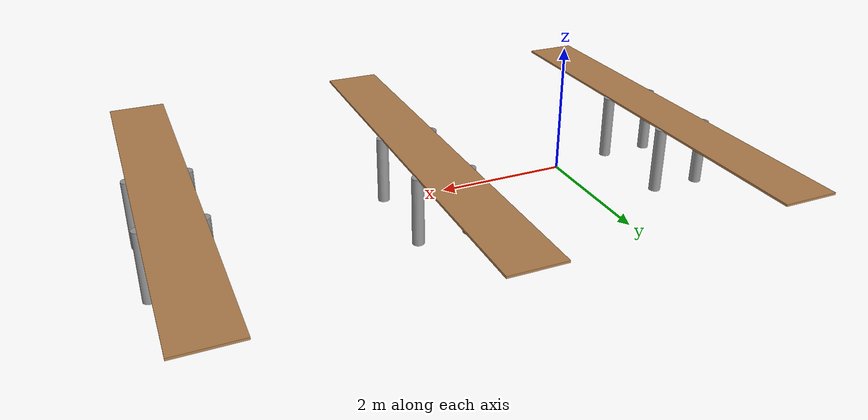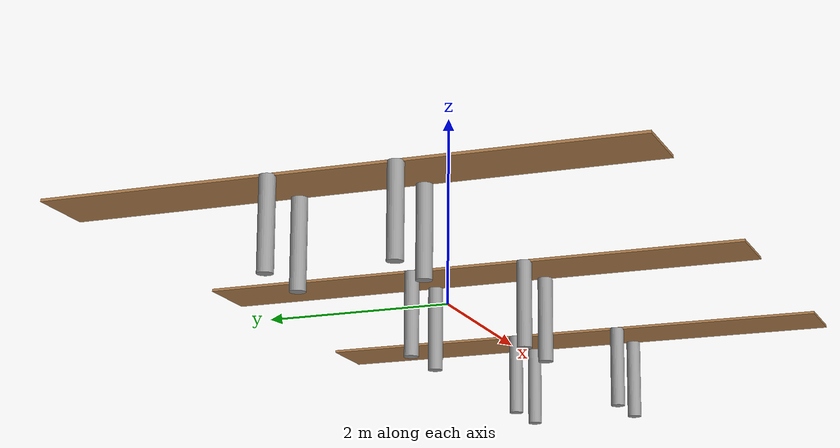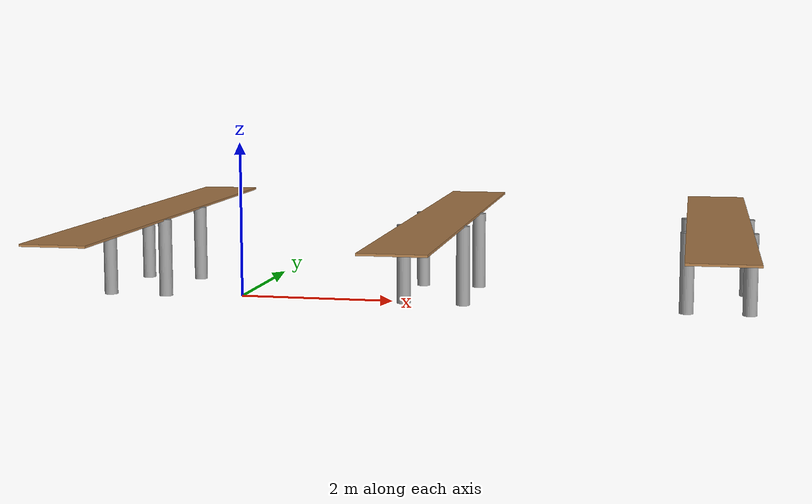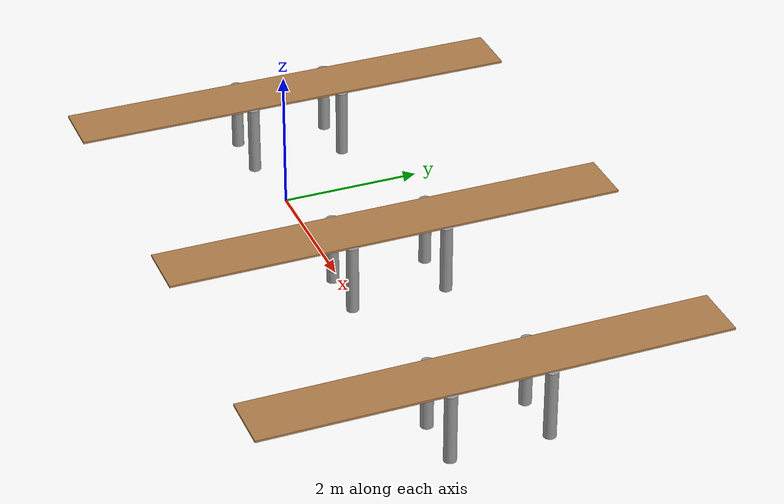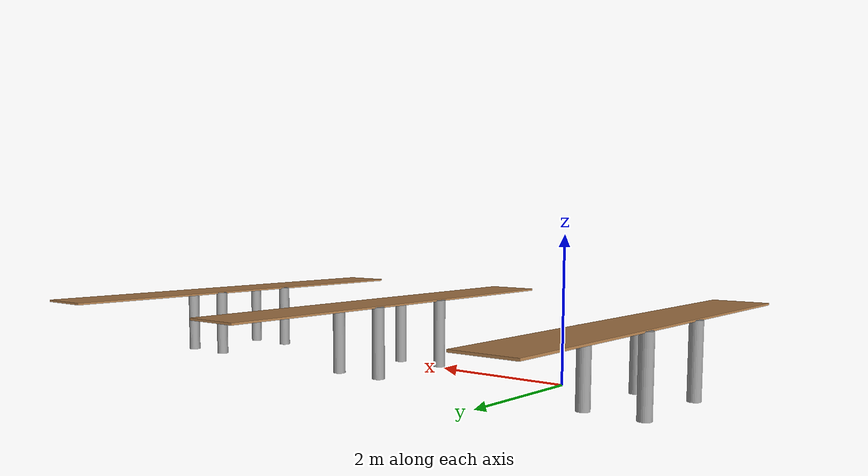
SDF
<?xml version='1.0'?>
<sdf version='1.6'>
  <model name='table'>
    <link name='link'>
      <pose frame=''>6.07476 0.523898 0 0 -0 1.57</pose>
      <self_collide>0</self_collide>
      <kinematic>0</kinematic>
      <gravity>1</gravity>
      <inertial>
        <mass>6.06198</mass>
        <pose frame=''>0 0 0 0 -0 0</pose>
        <inertia>
          <ixx>0.520272</ixx>
          <ixy>0</ixy>
          <ixz>0</ixz>
          <iyy>0.520272</iyy>
          <iyz>0</iyz>
          <izz>0.0302146</izz>
        </inertia>
      </inertial>
      <visual name='visual1'>
        <pose frame=''>0 0 1 0 -0 0</pose>
        <geometry>
          <box>
            <size>6.44799 0.8 0.03</size>
          </box>
        </geometry>
        <material>
          <script>
            <uri>file://media/materials/scripts/gazebo.material</uri>
            <name>Gazebo/Wood</name>
          </script>
          <shader type='pixel'>
            <normal_map>__default__</normal_map>
          </shader>
          <ambient>1 1 1 1</ambient>
          <diffuse>1 1 1 1</diffuse>
          <specular>0.2 0.2 0.2 1</specular>
          <emissive>0 0 0 1</emissive>
        </material>
        <transparency>0</transparency>
        <cast_shadows>1</cast_shadows>
      </visual>
      <visual name='front_left_leg'>
        <pose frame=''>0.68 0.38 0.5 0 -0 0</pose>
        <geometry>
          <cylinder>
            <radius>0.0864663</radius>
            <length>1</length>
          </cylinder>
        </geometry>
        <material>
          <script>
            <uri>file://media/materials/scripts/gazebo.material</uri>
            <name>Gazebo/Grey</name>
          </script>
          <shader type='pixel'>
            <normal_map>__default__</normal_map>
          </shader>
          <ambient>0.3 0.3 0.3 1</ambient>
          <diffuse>0.7 0.7 0.7 1</diffuse>
          <specular>0.01 0.01 0.01 1</specular>
          <emissive>0 0 0 1</emissive>
        </material>
        <transparency>0</transparency>
        <cast_shadows>1</cast_shadows>
      </visual>
      <visual name='front_right_leg'>
        <pose frame=''>0.68 -0.38 0.5 0 -0 0</pose>
        <geometry>
          <cylinder>
            <radius>0.0864663</radius>
            <length>1</length>
          </cylinder>
        </geometry>
        <material>
          <script>
            <uri>file://media/materials/scripts/gazebo.material</uri>
            <name>Gazebo/Grey</name>
          </script>
          <shader type='pixel'>
            <normal_map>__default__</normal_map>
          </shader>
          <ambient>0.3 0.3 0.3 1</ambient>
          <diffuse>0.7 0.7 0.7 1</diffuse>
          <specular>0.01 0.01 0.01 1</specular>
          <emissive>0 0 0 1</emissive>
        </material>
        <transparency>0</transparency>
        <cast_shadows>1</cast_shadows>
      </visual>
      <visual name='back_right_leg'>
        <pose frame=''>-0.68 -0.38 0.5 0 -0 0</pose>
        <geometry>
          <cylinder>
            <radius>0.0864663</radius>
            <length>1</length>
          </cylinder>
        </geometry>
        <material>
          <script>
            <uri>file://media/materials/scripts/gazebo.material</uri>
            <name>Gazebo/Grey</name>
          </script>
          <shader type='pixel'>
            <normal_map>__default__</normal_map>
          </shader>
          <ambient>0.3 0.3 0.3 1</ambient>
          <diffuse>0.7 0.7 0.7 1</diffuse>
          <specular>0.01 0.01 0.01 1</specular>
          <emissive>0 0 0 1</emissive>
        </material>
        <transparency>0</transparency>
        <cast_shadows>1</cast_shadows>
      </visual>
      <visual name='back_left_leg'>
        <pose frame=''>-0.68 0.38 0.5 0 -0 0</pose>
        <geometry>
          <cylinder>
            <radius>0.0864663</radius>
            <length>1</length>
          </cylinder>
        </geometry>
        <material>
          <script>
            <uri>file://media/materials/scripts/gazebo.material</uri>
            <name>Gazebo/Grey</name>
          </script>
          <shader type='pixel'>
            <normal_map>__default__</normal_map>
          </shader>
          <ambient>0.3 0.3 0.3 1</ambient>
          <diffuse>0.7 0.7 0.7 1</diffuse>
          <specular>0.01 0.01 0.01 1</specular>
          <emissive>0 0 0 1</emissive>
        </material>
        <transparency>0</transparency>
        <cast_shadows>1</cast_shadows>
      </visual>
      <collision name='surface'>
        <laser_retro>0</laser_retro>
        <max_contacts>10</max_contacts>
        <pose frame=''>0 0 1 0 -0 0</pose>
        <geometry>
          <box>
            <size>6.44799 0.8 0.03</size>
          </box>
        </geometry>
        <surface>
          <friction>
            <ode>
              <mu>0.6</mu>
              <mu2>0.6</mu2>
              <fdir1>0 0 0</fdir1>
              <slip1>0</slip1>
              <slip2>0</slip2>
            </ode>
            <torsional>
              <coefficient>1</coefficient>
              <patch_radius>0</patch_radius>
              <surface_radius>0</surface_radius>
              <use_patch_radius>1</use_patch_radius>
              <ode>
                <slip>0</slip>
              </ode>
            </torsional>
          </friction>
          <bounce>
            <restitution_coefficient>0</restitution_coefficient>
            <threshold>1e+06</threshold>
          </bounce>
          <contact>
            <collide_without_contact>0</collide_without_contact>
            <collide_without_contact_bitmask>1</collide_without_contact_bitmask>
            <collide_bitmask>1</collide_bitmask>
            <ode>
              <soft_cfm>0</soft_cfm>
              <soft_erp>0.2</soft_erp>
              <kp>1e+13</kp>
              <kd>1</kd>
              <max_vel>0.01</max_vel>
              <min_depth>0</min_depth>
            </ode>
            <bullet>
              <split_impulse>1</split_impulse>
              <split_impulse_penetration_threshold>-0.01</split_impulse_penetration_threshold>
              <soft_cfm>0</soft_cfm>
              <soft_erp>0.2</soft_erp>
              <kp>1e+13</kp>
              <kd>1</kd>
            </bullet>
          </contact>
        </surface>
      </collision>
      <collision name='front_left_leg'>
        <laser_retro>0</laser_retro>
        <max_contacts>10</max_contacts>
        <pose frame=''>0.68 0.38 0.5 0 -0 0</pose>
        <geometry>
          <cylinder>
            <radius>0.086466</radius>
            <length>1</length>
          </cylinder>
        </geometry>
        <surface>
          <friction>
            <ode>
              <mu>1</mu>
              <mu2>1</mu2>
              <fdir1>0 0 0</fdir1>
              <slip1>0</slip1>
              <slip2>0</slip2>
            </ode>
            <torsional>
              <coefficient>1</coefficient>
              <patch_radius>0</patch_radius>
              <surface_radius>0</surface_radius>
              <use_patch_radius>1</use_patch_radius>
              <ode>
                <slip>0</slip>
              </ode>
            </torsional>
          </friction>
          <bounce>
            <restitution_coefficient>0</restitution_coefficient>
            <threshold>1e+06</threshold>
          </bounce>
          <contact>
            <collide_without_contact>0</collide_without_contact>
            <collide_without_contact_bitmask>1</collide_without_contact_bitmask>
            <collide_bitmask>1</collide_bitmask>
            <ode>
              <soft_cfm>0</soft_cfm>
              <soft_erp>0.2</soft_erp>
              <kp>1e+13</kp>
              <kd>1</kd>
              <max_vel>0.01</max_vel>
              <min_depth>0</min_depth>
            </ode>
            <bullet>
              <split_impulse>1</split_impulse>
              <split_impulse_penetration_threshold>-0.01</split_impulse_penetration_threshold>
              <soft_cfm>0</soft_cfm>
              <soft_erp>0.2</soft_erp>
              <kp>1e+13</kp>
              <kd>1</kd>
            </bullet>
          </contact>
        </surface>
      </collision>
      <collision name='back_right_leg'>
        <laser_retro>0</laser_retro>
        <max_contacts>10</max_contacts>
        <pose frame=''>-0.68 -0.38 0.5 0 -0 0</pose>
        <geometry>
          <cylinder>
            <radius>0.086466</radius>
            <length>1</length>
          </cylinder>
        </geometry>
        <surface>
          <friction>
            <ode>
              <mu>1</mu>
              <mu2>1</mu2>
              <fdir1>0 0 0</fdir1>
              <slip1>0</slip1>
              <slip2>0</slip2>
            </ode>
            <torsional>
              <coefficient>1</coefficient>
              <patch_radius>0</patch_radius>
              <surface_radius>0</surface_radius>
              <use_patch_radius>1</use_patch_radius>
              <ode>
                <slip>0</slip>
              </ode>
            </torsional>
          </friction>
          <bounce>
            <restitution_coefficient>0</restitution_coefficient>
            <threshold>1e+06</threshold>
          </bounce>
          <contact>
            <collide_without_contact>0</collide_without_contact>
            <collide_without_contact_bitmask>1</collide_without_contact_bitmask>
            <collide_bitmask>1</collide_bitmask>
            <ode>
              <soft_cfm>0</soft_cfm>
              <soft_erp>0.2</soft_erp>
              <kp>1e+13</kp>
              <kd>1</kd>
              <max_vel>0.01</max_vel>
              <min_depth>0</min_depth>
            </ode>
            <bullet>
              <split_impulse>1</split_impulse>
              <split_impulse_penetration_threshold>-0.01</split_impulse_penetration_threshold>
              <soft_cfm>0</soft_cfm>
              <soft_erp>0.2</soft_erp>
              <kp>1e+13</kp>
              <kd>1</kd>
            </bullet>
          </contact>
        </surface>
      </collision>
      <collision name='front_right_leg'>
        <laser_retro>0</laser_retro>
        <max_contacts>10</max_contacts>
        <pose frame=''>0.68 -0.38 0.5 0 -0 0</pose>
        <geometry>
          <cylinder>
            <radius>0.086466</radius>
            <length>1</length>
          </cylinder>
        </geometry>
        <surface>
          <friction>
            <ode>
              <mu>1</mu>
              <mu2>1</mu2>
              <fdir1>0 0 0</fdir1>
              <slip1>0</slip1>
              <slip2>0</slip2>
            </ode>
            <torsional>
              <coefficient>1</coefficient>
              <patch_radius>0</patch_radius>
              <surface_radius>0</surface_radius>
              <use_patch_radius>1</use_patch_radius>
              <ode>
                <slip>0</slip>
              </ode>
            </torsional>
          </friction>
          <bounce>
            <restitution_coefficient>0</restitution_coefficient>
            <threshold>1e+06</threshold>
          </bounce>
          <contact>
            <collide_without_contact>0</collide_without_contact>
            <collide_without_contact_bitmask>1</collide_without_contact_bitmask>
            <collide_bitmask>1</collide_bitmask>
            <ode>
              <soft_cfm>0</soft_cfm>
              <soft_erp>0.2</soft_erp>
              <kp>1e+13</kp>
              <kd>1</kd>
              <max_vel>0.01</max_vel>
              <min_depth>0</min_depth>
            </ode>
            <bullet>
              <split_impulse>1</split_impulse>
              <split_impulse_penetration_threshold>-0.01</split_impulse_penetration_threshold>
              <soft_cfm>0</soft_cfm>
              <soft_erp>0.2</soft_erp>
              <kp>1e+13</kp>
              <kd>1</kd>
            </bullet>
          </contact>
        </surface>
      </collision>
      <collision name='back_left_leg'>
        <laser_retro>0</laser_retro>
        <max_contacts>10</max_contacts>
        <pose frame=''>-0.68 0.38 0.5 0 -0 0</pose>
        <geometry>
          <cylinder>
            <radius>0.086466</radius>
            <length>1</length>
          </cylinder>
        </geometry>
        <surface>
          <friction>
            <ode>
              <mu>1</mu>
              <mu2>1</mu2>
              <fdir1>0 0 0</fdir1>
              <slip1>0</slip1>
              <slip2>0</slip2>
            </ode>
            <torsional>
              <coefficient>1</coefficient>
              <patch_radius>0</patch_radius>
              <surface_radius>0</surface_radius>
              <use_patch_radius>1</use_patch_radius>
              <ode>
                <slip>0</slip>
              </ode>
            </torsional>
          </friction>
          <bounce>
            <restitution_coefficient>0</restitution_coefficient>
            <threshold>1e+06</threshold>
          </bounce>
          <contact>
            <collide_without_contact>0</collide_without_contact>
            <collide_without_contact_bitmask>1</collide_without_contact_bitmask>
            <collide_bitmask>1</collide_bitmask>
            <ode>
              <soft_cfm>0</soft_cfm>
              <soft_erp>0.2</soft_erp>
              <kp>1e+13</kp>
              <kd>1</kd>
              <max_vel>0.01</max_vel>
              <min_depth>0</min_depth>
            </ode>
            <bullet>
              <split_impulse>1</split_impulse>
              <split_impulse_penetration_threshold>-0.01</split_impulse_penetration_threshold>
              <soft_cfm>0</soft_cfm>
              <soft_erp>0.2</soft_erp>
              <kp>1e+13</kp>
              <kd>1</kd>
            </bullet>
          </contact>
        </surface>
      </collision>
    </link>
    <link name='link_clone'>
      <pose frame=''>2.54774 0.582371 0 0 -0 1.57</pose>
      <inertial>
        <mass>6.06198</mass>
        <pose frame=''>0 0 0 0 -0 0</pose>
        <inertia>
          <ixx>0.520272</ixx>
          <ixy>0</ixy>
          <ixz>0</ixz>
          <iyy>0.520272</iyy>
          <iyz>0</iyz>
          <izz>0.0302146</izz>
        </inertia>
      </inertial>
      <self_collide>0</self_collide>
      <kinematic>0</kinematic>
      <visual name='front_left_leg'>
        <pose frame=''>0.68 0.38 0.5 0 -0 0</pose>
        <geometry>
          <cylinder>
            <radius>0.0864663</radius>
            <length>1</length>
          </cylinder>
        </geometry>
        <material>
          <script>
            <uri>file://media/materials/scripts/gazebo.material</uri>
            <name>Gazebo/Grey</name>
          </script>
          <shader type='pixel'>
            <normal_map>__default__</normal_map>
          </shader>
          <ambient>0.3 0.3 0.3 1</ambient>
          <diffuse>0.7 0.7 0.7 1</diffuse>
          <specular>0.01 0.01 0.01 1</specular>
          <emissive>0 0 0 1</emissive>
        </material>
        <transparency>0</transparency>
        <cast_shadows>1</cast_shadows>
      </visual>
      <visual name='front_right_leg'>
        <pose frame=''>0.68 -0.38 0.5 0 -0 0</pose>
        <geometry>
          <cylinder>
            <radius>0.0864663</radius>
            <length>1</length>
          </cylinder>
        </geometry>
        <material>
          <script>
            <uri>file://media/materials/scripts/gazebo.material</uri>
            <name>Gazebo/Grey</name>
          </script>
          <shader type='pixel'>
            <normal_map>__default__</normal_map>
          </shader>
          <ambient>0.3 0.3 0.3 1</ambient>
          <diffuse>0.7 0.7 0.7 1</diffuse>
          <specular>0.01 0.01 0.01 1</specular>
          <emissive>0 0 0 1</emissive>
        </material>
        <transparency>0</transparency>
        <cast_shadows>1</cast_shadows>
      </visual>
      <visual name='back_right_leg'>
        <pose frame=''>-0.68 -0.38 0.5 0 -0 0</pose>
        <geometry>
          <cylinder>
            <radius>0.0864663</radius>
            <length>1</length>
          </cylinder>
        </geometry>
        <material>
          <script>
            <uri>file://media/materials/scripts/gazebo.material</uri>
            <name>Gazebo/Grey</name>
          </script>
          <shader type='pixel'>
            <normal_map>__default__</normal_map>
          </shader>
          <ambient>0.3 0.3 0.3 1</ambient>
          <diffuse>0.7 0.7 0.7 1</diffuse>
          <specular>0.01 0.01 0.01 1</specular>
          <emissive>0 0 0 1</emissive>
        </material>
        <transparency>0</transparency>
        <cast_shadows>1</cast_shadows>
      </visual>
      <visual name='back_left_leg'>
        <pose frame=''>-0.68 0.38 0.5 0 -0 0</pose>
        <geometry>
          <cylinder>
            <radius>0.0864663</radius>
            <length>1</length>
          </cylinder>
        </geometry>
        <material>
          <script>
            <uri>file://media/materials/scripts/gazebo.material</uri>
            <name>Gazebo/Grey</name>
          </script>
          <shader type='pixel'>
            <normal_map>__default__</normal_map>
          </shader>
          <ambient>0.3 0.3 0.3 1</ambient>
          <diffuse>0.7 0.7 0.7 1</diffuse>
          <specular>0.01 0.01 0.01 1</specular>
          <emissive>0 0 0 1</emissive>
        </material>
        <transparency>0</transparency>
        <cast_shadows>1</cast_shadows>
      </visual>
      <visual name='visual1'>
        <pose frame=''>0 0 1 0 -0 0</pose>
        <geometry>
          <box>
            <size>6.44799 0.8 0.03</size>
          </box>
        </geometry>
        <material>
          <script>
            <uri>file://media/materials/scripts/gazebo.material</uri>
            <name>Gazebo/Wood</name>
          </script>
          <shader type='pixel'>
            <normal_map>__default__</normal_map>
          </shader>
          <ambient>1 1 1 1</ambient>
          <diffuse>1 1 1 1</diffuse>
          <specular>0.2 0.2 0.2 1</specular>
          <emissive>0 0 0 1</emissive>
        </material>
        <transparency>0</transparency>
        <cast_shadows>1</cast_shadows>
      </visual>
      <collision name='back_right_leg_0'>
        <laser_retro>0</laser_retro>
        <max_contacts>10</max_contacts>
        <pose frame=''>-0.68 -0.38 0.5 0 -0 0</pose>
        <geometry>
          <cylinder>
            <radius>0.086466</radius>
            <length>1</length>
          </cylinder>
        </geometry>
        <surface>
          <friction>
            <ode>
              <mu>1</mu>
              <mu2>1</mu2>
              <fdir1>0 0 0</fdir1>
              <slip1>0</slip1>
              <slip2>0</slip2>
            </ode>
            <torsional>
              <coefficient>1</coefficient>
              <patch_radius>0</patch_radius>
              <surface_radius>0</surface_radius>
              <use_patch_radius>1</use_patch_radius>
              <ode>
                <slip>0</slip>
              </ode>
            </torsional>
          </friction>
          <bounce>
            <restitution_coefficient>0</restitution_coefficient>
            <threshold>1e+06</threshold>
          </bounce>
          <contact>
            <collide_without_contact>0</collide_without_contact>
            <collide_without_contact_bitmask>1</collide_without_contact_bitmask>
            <collide_bitmask>1</collide_bitmask>
            <ode>
              <soft_cfm>0</soft_cfm>
              <soft_erp>0.2</soft_erp>
              <kp>1e+13</kp>
              <kd>1</kd>
              <max_vel>0.01</max_vel>
              <min_depth>0</min_depth>
            </ode>
            <bullet>
              <split_impulse>1</split_impulse>
              <split_impulse_penetration_threshold>-0.01</split_impulse_penetration_threshold>
              <soft_cfm>0</soft_cfm>
              <soft_erp>0.2</soft_erp>
              <kp>1e+13</kp>
              <kd>1</kd>
            </bullet>
          </contact>
        </surface>
      </collision>
      <collision name='surface'>
        <laser_retro>0</laser_retro>
        <max_contacts>10</max_contacts>
        <pose frame=''>0 0 1 0 -0 0</pose>
        <geometry>
          <box>
            <size>6.44799 0.8 0.03</size>
          </box>
        </geometry>
        <surface>
          <friction>
            <ode>
              <mu>1</mu>
              <mu2>1</mu2>
              <fdir1>0 0 0</fdir1>
              <slip1>0</slip1>
              <slip2>0</slip2>
            </ode>
            <torsional>
              <coefficient>1</coefficient>
              <patch_radius>0</patch_radius>
              <surface_radius>0</surface_radius>
              <use_patch_radius>1</use_patch_radius>
              <ode>
                <slip>0</slip>
              </ode>
            </torsional>
          </friction>
          <bounce>
            <restitution_coefficient>0</restitution_coefficient>
            <threshold>1e+06</threshold>
          </bounce>
          <contact>
            <collide_without_contact>0</collide_without_contact>
            <collide_without_contact_bitmask>1</collide_without_contact_bitmask>
            <collide_bitmask>1</collide_bitmask>
            <ode>
              <soft_cfm>0</soft_cfm>
              <soft_erp>0.2</soft_erp>
              <kp>1e+13</kp>
              <kd>1</kd>
              <max_vel>0.01</max_vel>
              <min_depth>0</min_depth>
            </ode>
            <bullet>
              <split_impulse>1</split_impulse>
              <split_impulse_penetration_threshold>-0.01</split_impulse_penetration_threshold>
              <soft_cfm>0</soft_cfm>
              <soft_erp>0.2</soft_erp>
              <kp>1e+13</kp>
              <kd>1</kd>
            </bullet>
          </contact>
        </surface>
      </collision>
      <collision name='back_left_leg_0'>
        <laser_retro>0</laser_retro>
        <max_contacts>10</max_contacts>
        <pose frame=''>-0.68 0.38 0.5 0 -0 0</pose>
        <geometry>
          <cylinder>
            <radius>0.086466</radius>
            <length>1</length>
          </cylinder>
        </geometry>
        <surface>
          <friction>
            <ode>
              <mu>1</mu>
              <mu2>1</mu2>
              <fdir1>0 0 0</fdir1>
              <slip1>0</slip1>
              <slip2>0</slip2>
            </ode>
            <torsional>
              <coefficient>1</coefficient>
              <patch_radius>0</patch_radius>
              <surface_radius>0</surface_radius>
              <use_patch_radius>1</use_patch_radius>
              <ode>
                <slip>0</slip>
              </ode>
            </torsional>
          </friction>
          <bounce>
            <restitution_coefficient>0</restitution_coefficient>
            <threshold>1e+06</threshold>
          </bounce>
          <contact>
            <collide_without_contact>0</collide_without_contact>
            <collide_without_contact_bitmask>1</collide_without_contact_bitmask>
            <collide_bitmask>1</collide_bitmask>
            <ode>
              <soft_cfm>0</soft_cfm>
              <soft_erp>0.2</soft_erp>
              <kp>1e+13</kp>
              <kd>1</kd>
              <max_vel>0.01</max_vel>
              <min_depth>0</min_depth>
            </ode>
            <bullet>
              <split_impulse>1</split_impulse>
              <split_impulse_penetration_threshold>-0.01</split_impulse_penetration_threshold>
              <soft_cfm>0</soft_cfm>
              <soft_erp>0.2</soft_erp>
              <kp>1e+13</kp>
              <kd>1</kd>
            </bullet>
          </contact>
        </surface>
      </collision>
      <collision name='front_right_leg_0'>
        <laser_retro>0</laser_retro>
        <max_contacts>10</max_contacts>
        <pose frame=''>0.68 -0.38 0.5 0 -0 0</pose>
        <geometry>
          <cylinder>
            <radius>0.086466</radius>
            <length>1</length>
          </cylinder>
        </geometry>
        <surface>
          <friction>
            <ode>
              <mu>1</mu>
              <mu2>1</mu2>
              <fdir1>0 0 0</fdir1>
              <slip1>0</slip1>
              <slip2>0</slip2>
            </ode>
            <torsional>
              <coefficient>1</coefficient>
              <patch_radius>0</patch_radius>
              <surface_radius>0</surface_radius>
              <use_patch_radius>1</use_patch_radius>
              <ode>
                <slip>0</slip>
              </ode>
            </torsional>
          </friction>
          <bounce>
            <restitution_coefficient>0</restitution_coefficient>
            <threshold>1e+06</threshold>
          </bounce>
          <contact>
            <collide_without_contact>0</collide_without_contact>
            <collide_without_contact_bitmask>1</collide_without_contact_bitmask>
            <collide_bitmask>1</collide_bitmask>
            <ode>
              <soft_cfm>0</soft_cfm>
              <soft_erp>0.2</soft_erp>
              <kp>1e+13</kp>
              <kd>1</kd>
              <max_vel>0.01</max_vel>
              <min_depth>0</min_depth>
            </ode>
            <bullet>
              <split_impulse>1</split_impulse>
              <split_impulse_penetration_threshold>-0.01</split_impulse_penetration_threshold>
              <soft_cfm>0</soft_cfm>
              <soft_erp>0.2</soft_erp>
              <kp>1e+13</kp>
              <kd>1</kd>
            </bullet>
          </contact>
        </surface>
      </collision>
      <collision name='front_left_leg_0'>
        <laser_retro>0</laser_retro>
        <max_contacts>10</max_contacts>
        <pose frame=''>0.68 0.38 0.5 0 -0 0</pose>
        <geometry>
          <cylinder>
            <radius>0.086466</radius>
            <length>1</length>
          </cylinder>
        </geometry>
        <surface>
          <friction>
            <ode>
              <mu>1</mu>
              <mu2>1</mu2>
              <fdir1>0 0 0</fdir1>
              <slip1>0</slip1>
              <slip2>0</slip2>
            </ode>
            <torsional>
              <coefficient>1</coefficient>
              <patch_radius>0</patch_radius>
              <surface_radius>0</surface_radius>
              <use_patch_radius>1</use_patch_radius>
              <ode>
                <slip>0</slip>
              </ode>
            </torsional>
          </friction>
          <bounce>
            <restitution_coefficient>0</restitution_coefficient>
            <threshold>1e+06</threshold>
          </bounce>
          <contact>
            <collide_without_contact>0</collide_without_contact>
            <collide_without_contact_bitmask>1</collide_without_contact_bitmask>
            <collide_bitmask>1</collide_bitmask>
            <ode>
              <soft_cfm>0</soft_cfm>
              <soft_erp>0.2</soft_erp>
              <kp>1e+13</kp>
              <kd>1</kd>
              <max_vel>0.01</max_vel>
              <min_depth>0</min_depth>
            </ode>
            <bullet>
              <split_impulse>1</split_impulse>
              <split_impulse_penetration_threshold>-0.01</split_impulse_penetration_threshold>
              <soft_cfm>0</soft_cfm>
              <soft_erp>0.2</soft_erp>
              <kp>1e+13</kp>
              <kd>1</kd>
            </bullet>
          </contact>
        </surface>
      </collision>
    </link>
    <link name='link_clone_0'>
      <pose frame=''>-1.37256 0.557287 0 0 -0 1.57</pose>
      <inertial>
        <mass>6.06198</mass>
        <pose frame=''>0 0 0 0 -0 0</pose>
        <inertia>
          <ixx>0.520272</ixx>
          <ixy>0</ixy>
          <ixz>0</ixz>
          <iyy>0.520272</iyy>
          <iyz>0</iyz>
          <izz>0.0302146</izz>
        </inertia>
      </inertial>
      <self_collide>0</self_collide>
      <kinematic>0</kinematic>
      <visual name='front_right_leg'>
        <pose frame=''>0.68 -0.38 0.5 0 -0 0</pose>
        <geometry>
          <cylinder>
            <radius>0.0864663</radius>
            <length>1</length>
          </cylinder>
        </geometry>
        <material>
          <script>
            <uri>file://media/materials/scripts/gazebo.material</uri>
            <name>Gazebo/Grey</name>
          </script>
          <shader type='pixel'>
            <normal_map>__default__</normal_map>
          </shader>
          <ambient>0.3 0.3 0.3 1</ambient>
          <diffuse>0.7 0.7 0.7 1</diffuse>
          <specular>0.01 0.01 0.01 1</specular>
          <emissive>0 0 0 1</emissive>
        </material>
        <transparency>0</transparency>
        <cast_shadows>1</cast_shadows>
      </visual>
      <visual name='back_right_leg'>
        <pose frame=''>-0.68 -0.38 0.5 0 -0 0</pose>
        <geometry>
          <cylinder>
            <radius>0.0864663</radius>
            <length>1</length>
          </cylinder>
        </geometry>
        <material>
          <script>
            <uri>file://media/materials/scripts/gazebo.material</uri>
            <name>Gazebo/Grey</name>
          </script>
          <shader type='pixel'>
            <normal_map>__default__</normal_map>
          </shader>
          <ambient>0.3 0.3 0.3 1</ambient>
          <diffuse>0.7 0.7 0.7 1</diffuse>
          <specular>0.01 0.01 0.01 1</specular>
          <emissive>0 0 0 1</emissive>
        </material>
        <transparency>0</transparency>
        <cast_shadows>1</cast_shadows>
      </visual>
      <visual name='back_left_leg'>
        <pose frame=''>-0.68 0.38 0.5 0 -0 0</pose>
        <geometry>
          <cylinder>
            <radius>0.0864663</radius>
            <length>1</length>
          </cylinder>
        </geometry>
        <material>
          <script>
            <uri>file://media/materials/scripts/gazebo.material</uri>
            <name>Gazebo/Grey</name>
          </script>
          <shader type='pixel'>
            <normal_map>__default__</normal_map>
          </shader>
          <ambient>0.3 0.3 0.3 1</ambient>
          <diffuse>0.7 0.7 0.7 1</diffuse>
          <specular>0.01 0.01 0.01 1</specular>
          <emissive>0 0 0 1</emissive>
        </material>
        <transparency>0</transparency>
        <cast_shadows>1</cast_shadows>
      </visual>
      <visual name='front_left_leg'>
        <pose frame=''>0.68 0.38 0.5 0 -0 0</pose>
        <geometry>
          <cylinder>
            <radius>0.0864663</radius>
            <length>1</length>
          </cylinder>
        </geometry>
        <material>
          <script>
            <uri>file://media/materials/scripts/gazebo.material</uri>
            <name>Gazebo/Grey</name>
          </script>
          <shader type='pixel'>
            <normal_map>__default__</normal_map>
          </shader>
          <ambient>0.3 0.3 0.3 1</ambient>
          <diffuse>0.7 0.7 0.7 1</diffuse>
          <specular>0.01 0.01 0.01 1</specular>
          <emissive>0 0 0 1</emissive>
        </material>
        <transparency>0</transparency>
        <cast_shadows>1</cast_shadows>
      </visual>
      <visual name='visual1'>
        <pose frame=''>0 0 1 0 -0 0</pose>
        <geometry>
          <box>
            <size>6.44799 0.8 0.03</size>
          </box>
        </geometry>
        <material>
          <script>
            <uri>file://media/materials/scripts/gazebo.material</uri>
            <name>Gazebo/Wood</name>
          </script>
          <shader type='pixel'>
            <normal_map>__default__</normal_map>
          </shader>
          <ambient>1 1 1 1</ambient>
          <diffuse>1 1 1 1</diffuse>
          <specular>0.2 0.2 0.2 1</specular>
          <emissive>0 0 0 1</emissive>
        </material>
        <transparency>0</transparency>
        <cast_shadows>1</cast_shadows>
      </visual>
      <collision name='back_left_leg_0'>
        <laser_retro>0</laser_retro>
        <max_contacts>10</max_contacts>
        <pose frame=''>-0.68 0.38 0.5 0 -0 0</pose>
        <geometry>
          <cylinder>
            <radius>0.086466</radius>
            <length>1</length>
          </cylinder>
        </geometry>
        <surface>
          <friction>
            <ode>
              <mu>1</mu>
              <mu2>1</mu2>
              <fdir1>0 0 0</fdir1>
              <slip1>0</slip1>
              <slip2>0</slip2>
            </ode>
            <torsional>
              <coefficient>1</coefficient>
              <patch_radius>0</patch_radius>
              <surface_radius>0</surface_radius>
              <use_patch_radius>1</use_patch_radius>
              <ode>
                <slip>0</slip>
              </ode>
            </torsional>
          </friction>
          <bounce>
            <restitution_coefficient>0</restitution_coefficient>
            <threshold>1e+06</threshold>
          </bounce>
          <contact>
            <collide_without_contact>0</collide_without_contact>
            <collide_without_contact_bitmask>1</collide_without_contact_bitmask>
            <collide_bitmask>1</collide_bitmask>
            <ode>
              <soft_cfm>0</soft_cfm>
              <soft_erp>0.2</soft_erp>
              <kp>1e+13</kp>
              <kd>1</kd>
              <max_vel>0.01</max_vel>
              <min_depth>0</min_depth>
            </ode>
            <bullet>
              <split_impulse>1</split_impulse>
              <split_impulse_penetration_threshold>-0.01</split_impulse_penetration_threshold>
              <soft_cfm>0</soft_cfm>
              <soft_erp>0.2</soft_erp>
              <kp>1e+13</kp>
              <kd>1</kd>
            </bullet>
          </contact>
        </surface>
      </collision>
      <collision name='surface'>
        <laser_retro>0</laser_retro>
        <max_contacts>10</max_contacts>
        <pose frame=''>0 0 1 0 -0 0</pose>
        <geometry>
          <box>
            <size>6.44799 0.8 0.03</size>
          </box>
        </geometry>
        <surface>
          <friction>
            <ode>
              <mu>1</mu>
              <mu2>1</mu2>
              <fdir1>0 0 0</fdir1>
              <slip1>0</slip1>
              <slip2>0</slip2>
            </ode>
            <torsional>
              <coefficient>1</coefficient>
              <patch_radius>0</patch_radius>
              <surface_radius>0</surface_radius>
              <use_patch_radius>1</use_patch_radius>
              <ode>
                <slip>0</slip>
              </ode>
            </torsional>
          </friction>
          <bounce>
            <restitution_coefficient>0</restitution_coefficient>
            <threshold>1e+06</threshold>
          </bounce>
          <contact>
            <collide_without_contact>0</collide_without_contact>
            <collide_without_contact_bitmask>1</collide_without_contact_bitmask>
            <collide_bitmask>1</collide_bitmask>
            <ode>
              <soft_cfm>0</soft_cfm>
              <soft_erp>0.2</soft_erp>
              <kp>1e+13</kp>
              <kd>1</kd>
              <max_vel>0.01</max_vel>
              <min_depth>0</min_depth>
            </ode>
            <bullet>
              <split_impulse>1</split_impulse>
              <split_impulse_penetration_threshold>-0.01</split_impulse_penetration_threshold>
              <soft_cfm>0</soft_cfm>
              <soft_erp>0.2</soft_erp>
              <kp>1e+13</kp>
              <kd>1</kd>
            </bullet>
          </contact>
        </surface>
      </collision>
      <collision name='front_right_leg_0'>
        <laser_retro>0</laser_retro>
        <max_contacts>10</max_contacts>
        <pose frame=''>0.68 -0.38 0.5 0 -0 0</pose>
        <geometry>
          <cylinder>
            <radius>0.086466</radius>
            <length>1</length>
          </cylinder>
        </geometry>
        <surface>
          <friction>
            <ode>
              <mu>1</mu>
              <mu2>1</mu2>
              <fdir1>0 0 0</fdir1>
              <slip1>0</slip1>
              <slip2>0</slip2>
            </ode>
            <torsional>
              <coefficient>1</coefficient>
              <patch_radius>0</patch_radius>
              <surface_radius>0</surface_radius>
              <use_patch_radius>1</use_patch_radius>
              <ode>
                <slip>0</slip>
              </ode>
            </torsional>
          </friction>
          <bounce>
            <restitution_coefficient>0</restitution_coefficient>
            <threshold>1e+06</threshold>
          </bounce>
          <contact>
            <collide_without_contact>0</collide_without_contact>
            <collide_without_contact_bitmask>1</collide_without_contact_bitmask>
            <collide_bitmask>1</collide_bitmask>
            <ode>
              <soft_cfm>0</soft_cfm>
              <soft_erp>0.2</soft_erp>
              <kp>1e+13</kp>
              <kd>1</kd>
              <max_vel>0.01</max_vel>
              <min_depth>0</min_depth>
            </ode>
            <bullet>
              <split_impulse>1</split_impulse>
              <split_impulse_penetration_threshold>-0.01</split_impulse_penetration_threshold>
              <soft_cfm>0</soft_cfm>
              <soft_erp>0.2</soft_erp>
              <kp>1e+13</kp>
              <kd>1</kd>
            </bullet>
          </contact>
        </surface>
      </collision>
      <collision name='front_left_leg_0'>
        <laser_retro>0</laser_retro>
        <max_contacts>10</max_contacts>
        <pose frame=''>0.68 0.38 0.5 0 -0 0</pose>
        <geometry>
          <cylinder>
            <radius>0.086466</radius>
            <length>1</length>
          </cylinder>
        </geometry>
        <surface>
          <friction>
            <ode>
              <mu>1</mu>
              <mu2>1</mu2>
              <fdir1>0 0 0</fdir1>
              <slip1>0</slip1>
              <slip2>0</slip2>
            </ode>
            <torsional>
              <coefficient>1</coefficient>
              <patch_radius>0</patch_radius>
              <surface_radius>0</surface_radius>
              <use_patch_radius>1</use_patch_radius>
              <ode>
                <slip>0</slip>
              </ode>
            </torsional>
          </friction>
          <bounce>
            <restitution_coefficient>0</restitution_coefficient>
            <threshold>1e+06</threshold>
          </bounce>
          <contact>
            <collide_without_contact>0</collide_without_contact>
            <collide_without_contact_bitmask>1</collide_without_contact_bitmask>
            <collide_bitmask>1</collide_bitmask>
            <ode>
              <soft_cfm>0</soft_cfm>
              <soft_erp>0.2</soft_erp>
              <kp>1e+13</kp>
              <kd>1</kd>
              <max_vel>0.01</max_vel>
              <min_depth>0</min_depth>
            </ode>
            <bullet>
              <split_impulse>1</split_impulse>
              <split_impulse_penetration_threshold>-0.01</split_impulse_penetration_threshold>
              <soft_cfm>0</soft_cfm>
              <soft_erp>0.2</soft_erp>
              <kp>1e+13</kp>
              <kd>1</kd>
            </bullet>
          </contact>
        </surface>
      </collision>
      <collision name='back_right_leg_0'>
        <laser_retro>0</laser_retro>
        <max_contacts>10</max_contacts>
        <pose frame=''>-0.68 -0.38 0.5 0 -0 0</pose>
        <geometry>
          <cylinder>
            <radius>0.086466</radius>
            <length>1</length>
          </cylinder>
        </geometry>
        <surface>
          <friction>
            <ode>
              <mu>1</mu>
              <mu2>1</mu2>
              <fdir1>0 0 0</fdir1>
              <slip1>0</slip1>
              <slip2>0</slip2>
            </ode>
            <torsional>
              <coefficient>1</coefficient>
              <patch_radius>0</patch_radius>
              <surface_radius>0</surface_radius>
              <use_patch_radius>1</use_patch_radius>
              <ode>
                <slip>0</slip>
              </ode>
            </torsional>
          </friction>
          <bounce>
            <restitution_coefficient>0</restitution_coefficient>
            <threshold>1e+06</threshold>
          </bounce>
          <contact>
            <collide_without_contact>0</collide_without_contact>
            <collide_without_contact_bitmask>1</collide_without_contact_bitmask>
            <collide_bitmask>1</collide_bitmask>
            <ode>
              <soft_cfm>0</soft_cfm>
              <soft_erp>0.2</soft_erp>
              <kp>1e+13</kp>
              <kd>1</kd>
              <max_vel>0.01</max_vel>
              <min_depth>0</min_depth>
            </ode>
            <bullet>
              <split_impulse>1</split_impulse>
              <split_impulse_penetration_threshold>-0.01</split_impulse_penetration_threshold>
              <soft_cfm>0</soft_cfm>
              <soft_erp>0.2</soft_erp>
              <kp>1e+13</kp>
              <kd>1</kd>
            </bullet>
          </contact>
        </surface>
      </collision>
    </link>
    <static>1</static>
    <allow_auto_disable>1</allow_auto_disable>
  </model>
</sdf>
